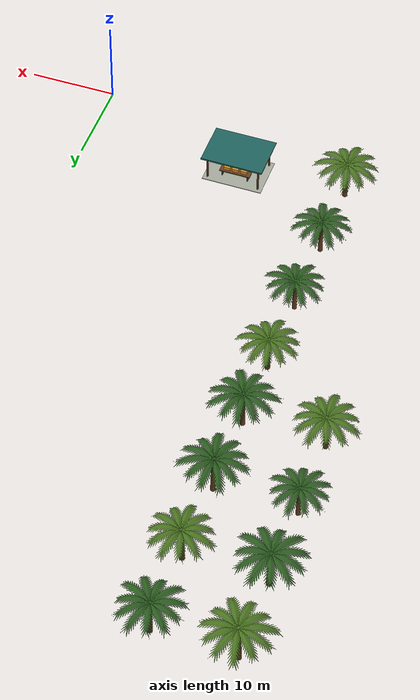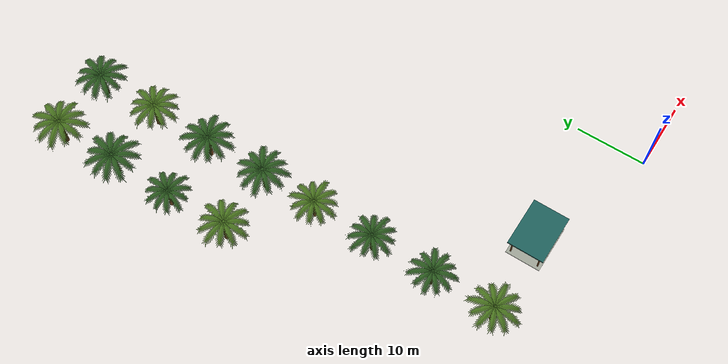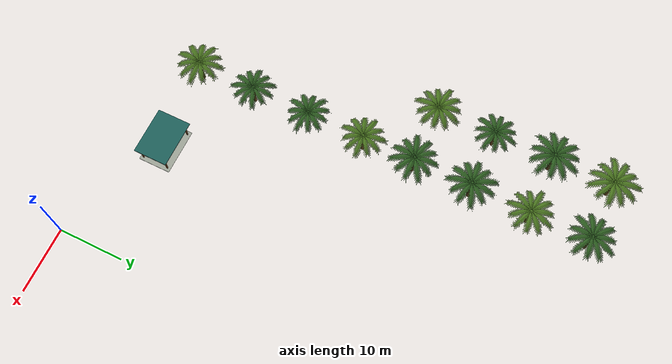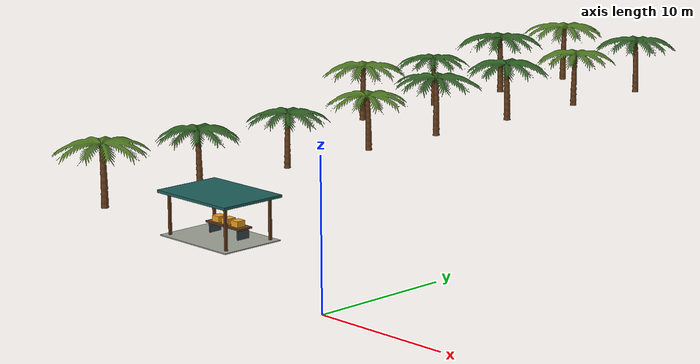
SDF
<sdf version="1.9">
 <world name="fleetscope_estate">
  <model name="palm_003">
   <static>true</static>
   <pose>-30.5 6.5 0 0 0 3.496963</pose>
   <link name="structure">
    <visual name="visual_0">
     <geometry>
      <mesh><uri>model://estate_palm/meshes/trunk.obj</uri><scale>1.032227 1.032227 1.032227</scale></mesh>
     </geometry>
     <material>
      <ambient>0.4 0.24 0.11 1</ambient>
      <diffuse>0.4 0.24 0.11 1</diffuse>
      <specular>.08 .08 .08 1</specular>
     </material>
    </visual>
    <visual name="visual_1">
     <geometry>
      <mesh><uri>model://estate_palm/meshes/fronds.obj</uri><scale>1.032227 1.032227 1.032227</scale></mesh>
     </geometry>
     <material>
      <ambient>0.29 0.46 0.12 1</ambient>
      <diffuse>0.29 0.46 0.12 1</diffuse>
      <specular>.08 .08 .08 1</specular>
     </material>
    </visual>
    <collision name="collision_2">
     <pose>0 0 2.32251 0 0 0</pose>
     <geometry><cylinder><radius>0.268378953316427</radius><length>4.645020345861236</length></cylinder></geometry>
    </collision>
   </link>
  </model>
  <model name="palm_007">
   <static>true</static>
   <pose>-30.5 15.5 0 0 0 3.859159</pose>
   <link name="structure">
    <visual name="visual_0">
     <geometry>
      <mesh><uri>model://estate_palm/meshes/trunk.obj</uri><scale>0.9527855 0.9527855 0.9527855</scale></mesh>
     </geometry>
     <material>
      <ambient>0.4 0.24 0.11 1</ambient>
      <diffuse>0.4 0.24 0.11 1</diffuse>
      <specular>.08 .08 .08 1</specular>
     </material>
    </visual>
    <visual name="visual_1">
     <geometry>
      <mesh><uri>model://estate_palm/meshes/fronds.obj</uri><scale>0.9527855 0.9527855 0.9527855</scale></mesh>
     </geometry>
     <material>
      <ambient>0.17 0.36 0.12 1</ambient>
      <diffuse>0.17 0.36 0.12 1</diffuse>
      <specular>.08 .08 .08 1</specular>
     </material>
    </visual>
    <collision name="collision_2">
     <pose>0 0 2.143767 0 0 0</pose>
     <geometry>
      <cylinder><radius>0.24772422933984545</radius><length>4.287534738574248</length></cylinder>
     </geometry>
    </collision>
   </link>
  </model>
  <model name="palm_011">
   <static>true</static>
   <pose>-30.5 24.5 0 0 0 1.580303</pose>
   <link name="structure">
    <visual name="visual_0">
     <geometry>
      <mesh><uri>model://estate_palm/meshes/trunk.obj</uri><scale>0.9462494 0.9462494 0.9462494</scale></mesh>
     </geometry>
     <material>
      <ambient>0.4 0.24 0.11 1</ambient>
      <diffuse>0.4 0.24 0.11 1</diffuse>
      <specular>.08 .08 .08 1</specular>
     </material>
    </visual>
    <visual name="visual_1">
     <geometry>
      <mesh><uri>model://estate_palm/meshes/fronds.obj</uri><scale>0.9462494 0.9462494 0.9462494</scale></mesh>
     </geometry>
     <material>
      <ambient>0.17 0.36 0.12 1</ambient>
      <diffuse>0.17 0.36 0.12 1</diffuse>
      <specular>.08 .08 .08 1</specular>
     </material>
    </visual>
    <collision name="collision_2">
     <pose>0 0 2.129061 0 0 0</pose>
     <geometry>
      <cylinder><radius>0.2460248506212297</radius><length>4.258122414598206</length></cylinder>
     </geometry>
    </collision>
   </link>
  </model>
  <model name="palm_015">
   <static>true</static>
   <pose>-30.5 33.5 0 0 0 3.502565</pose>
   <link name="structure">
    <visual name="visual_0">
     <geometry>
      <mesh><uri>model://estate_palm/meshes/trunk.obj</uri><scale>0.9748868 0.9748868 0.9748868</scale></mesh>
     </geometry>
     <material>
      <ambient>0.4 0.24 0.11 1</ambient>
      <diffuse>0.4 0.24 0.11 1</diffuse>
      <specular>.08 .08 .08 1</specular>
     </material>
    </visual>
    <visual name="visual_1">
     <geometry>
      <mesh><uri>model://estate_palm/meshes/fronds.obj</uri><scale>0.9748868 0.9748868 0.9748868</scale></mesh>
     </geometry>
     <material>
      <ambient>0.29 0.46 0.12 1</ambient>
      <diffuse>0.29 0.46 0.12 1</diffuse>
      <specular>.08 .08 .08 1</specular>
     </material>
    </visual>
    <collision name="collision_2">
     <pose>0 0 2.193495 0 0 0</pose>
     <geometry>
      <cylinder><radius>0.2534705695236388</radius><length>4.386990626370671</length></cylinder>
     </geometry>
    </collision>
   </link>
  </model>
  <model name="palm_018">
   <static>true</static>
   <pose>-39.5 41.5 0 0 0 0.1554416</pose>
   <link name="structure">
    <visual name="visual_0">
     <geometry>
      <mesh><uri>model://estate_palm/meshes/trunk.obj</uri><scale>1.027033 1.027033 1.027033</scale></mesh>
     </geometry>
     <material>
      <ambient>0.4 0.24 0.11 1</ambient>
      <diffuse>0.4 0.24 0.11 1</diffuse>
      <specular>.08 .08 .08 1</specular>
     </material>
    </visual>
    <visual name="visual_1">
     <geometry>
      <mesh><uri>model://estate_palm/meshes/fronds.obj</uri><scale>1.027033 1.027033 1.027033</scale></mesh>
     </geometry>
     <material>
      <ambient>0.29 0.46 0.12 1</ambient>
      <diffuse>0.29 0.46 0.12 1</diffuse>
      <specular>.08 .08 .08 1</specular>
     </material>
    </visual>
    <collision name="collision_2">
     <pose>0 0 2.310825 0 0 0</pose>
     <geometry>
      <cylinder><radius>0.2670286161219681</radius><length>4.621649125187909</length></cylinder>
     </geometry>
    </collision>
   </link>
  </model>
  <model name="palm_019">
   <static>true</static>
   <pose>-30.5 41.5 0 0 0 2.284203</pose>
   <link name="structure">
    <visual name="visual_0">
     <geometry>
      <mesh><uri>model://estate_palm/meshes/trunk.obj</uri><scale>1.05639 1.05639 1.05639</scale></mesh>
     </geometry>
     <material>
      <ambient>0.4 0.24 0.11 1</ambient>
      <diffuse>0.4 0.24 0.11 1</diffuse>
      <specular>.08 .08 .08 1</specular>
     </material>
    </visual>
    <visual name="visual_1">
     <geometry>
      <mesh><uri>model://estate_palm/meshes/fronds.obj</uri><scale>1.05639 1.05639 1.05639</scale></mesh>
     </geometry>
     <material>
      <ambient>0.17 0.36 0.12 1</ambient>
      <diffuse>0.17 0.36 0.12 1</diffuse>
      <specular>.08 .08 .08 1</specular>
     </material>
    </visual>
    <collision name="collision_2">
     <pose>0 0 2.376877 0 0 0</pose>
     <geometry>
      <cylinder><radius>0.27466132549567457</radius><length>4.7537537105020595</length></cylinder>
     </geometry>
    </collision>
   </link>
  </model>
  <model name="palm_022">
   <static>true</static>
   <pose>-39.5 50.5 0 0 0 3.181546</pose>
   <link name="structure">
    <visual name="visual_0">
     <geometry>
      <mesh><uri>model://estate_palm/meshes/trunk.obj</uri><scale>0.9256185 0.9256185 0.9256185</scale></mesh>
     </geometry>
     <material>
      <ambient>0.4 0.24 0.11 1</ambient>
      <diffuse>0.4 0.24 0.11 1</diffuse>
      <specular>.08 .08 .08 1</specular>
     </material>
    </visual>
    <visual name="visual_1">
     <geometry>
      <mesh><uri>model://estate_palm/meshes/fronds.obj</uri><scale>0.9256185 0.9256185 0.9256185</scale></mesh>
     </geometry>
     <material>
      <ambient>0.17 0.36 0.12 1</ambient>
      <diffuse>0.17 0.36 0.12 1</diffuse>
      <specular>.08 .08 .08 1</specular>
     </material>
    </visual>
    <collision name="collision_2">
     <pose>0 0 2.082642 0 0 0</pose>
     <geometry>
      <cylinder><radius>0.24066082237612724</radius><length>4.165283464202202</length></cylinder>
     </geometry>
    </collision>
   </link>
  </model>
  <model name="palm_023">
   <static>true</static>
   <pose>-30.5 50.5 0 0 0 3.770949</pose>
   <link name="structure">
    <visual name="visual_0">
     <geometry>
      <mesh><uri>model://estate_palm/meshes/trunk.obj</uri><scale>1.065032 1.065032 1.065032</scale></mesh>
     </geometry>
     <material>
      <ambient>0.4 0.24 0.11 1</ambient>
      <diffuse>0.4 0.24 0.11 1</diffuse>
      <specular>.08 .08 .08 1</specular>
     </material>
    </visual>
    <visual name="visual_1">
     <geometry>
      <mesh><uri>model://estate_palm/meshes/fronds.obj</uri><scale>1.065032 1.065032 1.065032</scale></mesh>
     </geometry>
     <material>
      <ambient>0.17 0.36 0.12 1</ambient>
      <diffuse>0.17 0.36 0.12 1</diffuse>
      <specular>.08 .08 .08 1</specular>
     </material>
    </visual>
    <collision name="collision_2">
     <pose>0 0 2.396323 0 0 0</pose>
     <geometry>
      <cylinder><radius>0.2769083964078007</radius><length>4.792645322442704</length></cylinder>
     </geometry>
    </collision>
   </link>
  </model>
  <model name="palm_026">
   <static>true</static>
   <pose>-39.5 59.5 0 0 0 3.010839</pose>
   <link name="structure">
    <visual name="visual_0">
     <geometry>
      <mesh><uri>model://estate_palm/meshes/trunk.obj</uri><scale>1.103771 1.103771 1.103771</scale></mesh>
     </geometry>
     <material>
      <ambient>0.4 0.24 0.11 1</ambient>
      <diffuse>0.4 0.24 0.11 1</diffuse>
      <specular>.08 .08 .08 1</specular>
     </material>
    </visual>
    <visual name="visual_1">
     <geometry>
      <mesh><uri>model://estate_palm/meshes/fronds.obj</uri><scale>1.103771 1.103771 1.103771</scale></mesh>
     </geometry>
     <material>
      <ambient>0.17 0.36 0.12 1</ambient>
      <diffuse>0.17 0.36 0.12 1</diffuse>
      <specular>.08 .08 .08 1</specular>
     </material>
    </visual>
    <collision name="collision_2">
     <pose>0 0 2.483485 0 0 0</pose>
     <geometry>
      <cylinder><radius>0.2869805344714632</radius><length>4.966970788929171</length></cylinder>
     </geometry>
    </collision>
   </link>
  </model>
  <model name="palm_027">
   <static>true</static>
   <pose>-30.5 59.5 0 0 0 0.159443</pose>
   <link name="structure">
    <visual name="visual_0">
     <geometry>
      <mesh><uri>model://estate_palm/meshes/trunk.obj</uri><scale>1.013957 1.013957 1.013957</scale></mesh>
     </geometry>
     <material>
      <ambient>0.4 0.24 0.11 1</ambient>
      <diffuse>0.4 0.24 0.11 1</diffuse>
      <specular>.08 .08 .08 1</specular>
     </material>
    </visual>
    <visual name="visual_1">
     <geometry>
      <mesh><uri>model://estate_palm/meshes/fronds.obj</uri><scale>1.013957 1.013957 1.013957</scale></mesh>
     </geometry>
     <material>
      <ambient>0.29 0.46 0.12 1</ambient>
      <diffuse>0.29 0.46 0.12 1</diffuse>
      <specular>.08 .08 .08 1</specular>
     </material>
    </visual>
    <collision name="collision_2">
     <pose>0 0 2.281404 0 0 0</pose>
     <geometry>
      <cylinder><radius>0.26362886983793904</radius><length>4.562807362579713</length></cylinder>
     </geometry>
    </collision>
   </link>
  </model>
  <model name="palm_030">
   <static>true</static>
   <pose>-39.5 68.5 0 0 0 0.6445064</pose>
   <link name="structure">
    <visual name="visual_0">
     <geometry>
      <mesh><uri>model://estate_palm/meshes/trunk.obj</uri><scale>1.095101 1.095101 1.095101</scale></mesh>
     </geometry>
     <material>
      <ambient>0.4 0.24 0.11 1</ambient>
      <diffuse>0.4 0.24 0.11 1</diffuse>
      <specular>.08 .08 .08 1</specular>
     </material>
    </visual>
    <visual name="visual_1">
     <geometry>
      <mesh><uri>model://estate_palm/meshes/fronds.obj</uri><scale>1.095101 1.095101 1.095101</scale></mesh>
     </geometry>
     <material>
      <ambient>0.29 0.46 0.12 1</ambient>
      <diffuse>0.29 0.46 0.12 1</diffuse>
      <specular>.08 .08 .08 1</specular>
     </material>
    </visual>
    <collision name="collision_2">
     <pose>0 0 2.463978 0 0 0</pose>
     <geometry><cylinder><radius>0.284726370411751</radius><length>4.927956410972612</length></cylinder></geometry>
    </collision>
   </link>
  </model>
  <model name="palm_031">
   <static>true</static>
   <pose>-30.5 68.5 0 0 0 2.95335</pose>
   <link name="structure">
    <visual name="visual_0">
     <geometry>
      <mesh><uri>model://estate_palm/meshes/trunk.obj</uri><scale>1.036908 1.036908 1.036908</scale></mesh>
     </geometry>
     <material>
      <ambient>0.4 0.24 0.11 1</ambient>
      <diffuse>0.4 0.24 0.11 1</diffuse>
      <specular>.08 .08 .08 1</specular>
     </material>
    </visual>
    <visual name="visual_1">
     <geometry>
      <mesh><uri>model://estate_palm/meshes/fronds.obj</uri><scale>1.036908 1.036908 1.036908</scale></mesh>
     </geometry>
     <material>
      <ambient>0.17 0.36 0.12 1</ambient>
      <diffuse>0.17 0.36 0.12 1</diffuse>
      <specular>.08 .08 .08 1</specular>
     </material>
    </visual>
    <collision name="collision_2">
     <pose>0 0 2.333043 0 0 0</pose>
     <geometry>
      <cylinder><radius>0.2695961145770716</radius><length>4.666086598449316</length></cylinder>
     </geometry>
    </collision>
   </link>
  </model>
  <model name="collection_west">
   <static>true</static>
   <pose>-18 7 0 0 0 0</pose>
   <link name="structure">
    <visual name="visual_0">
     <pose>0 0 0.04 0 0 0</pose>
     <geometry><box><size>7 5 0.08</size></box></geometry>
     <material>
      <ambient>0.63 0.65 0.6 1</ambient>
      <diffuse>0.63 0.65 0.6 1</diffuse>
      <specular>.08 .08 .08 1</specular>
     </material>
     <cast_shadows>false</cast_shadows>
    </visual>
    <collision name="collision_0">
     <pose>0 0 0.04 0 0 0</pose>
     <geometry><box><size>7 5 0.08</size></box></geometry>
    </collision>
    <visual name="visual_1">
     <pose>-3 -2 1.55 0 0 0</pose>
     <geometry><box><size>0.18 0.18 3.1</size></box></geometry>
     <material>
      <ambient>0.4 0.24 0.11 1</ambient>
      <diffuse>0.4 0.24 0.11 1</diffuse>
      <specular>.08 .08 .08 1</specular>
     </material>
    </visual>
    <collision name="collision_1">
     <pose>-3 -2 1.55 0 0 0</pose>
     <geometry><box><size>0.18 0.18 3.1</size></box></geometry>
    </collision>
    <visual name="visual_2">
     <pose>-3 2 1.55 0 0 0</pose>
     <geometry><box><size>0.18 0.18 3.1</size></box></geometry>
     <material>
      <ambient>0.4 0.24 0.11 1</ambient>
      <diffuse>0.4 0.24 0.11 1</diffuse>
      <specular>.08 .08 .08 1</specular>
     </material>
    </visual>
    <collision name="collision_2">
     <pose>-3 2 1.55 0 0 0</pose>
     <geometry><box><size>0.18 0.18 3.1</size></box></geometry>
    </collision>
    <visual name="visual_3">
     <pose>3 -2 1.55 0 0 0</pose>
     <geometry><box><size>0.18 0.18 3.1</size></box></geometry>
     <material>
      <ambient>0.4 0.24 0.11 1</ambient>
      <diffuse>0.4 0.24 0.11 1</diffuse>
      <specular>.08 .08 .08 1</specular>
     </material>
    </visual>
    <collision name="collision_3">
     <pose>3 -2 1.55 0 0 0</pose>
     <geometry><box><size>0.18 0.18 3.1</size></box></geometry>
    </collision>
    <visual name="visual_4">
     <pose>3 2 1.55 0 0 0</pose>
     <geometry><box><size>0.18 0.18 3.1</size></box></geometry>
     <material>
      <ambient>0.4 0.24 0.11 1</ambient>
      <diffuse>0.4 0.24 0.11 1</diffuse>
      <specular>.08 .08 .08 1</specular>
     </material>
    </visual>
    <collision name="collision_4">
     <pose>3 2 1.55 0 0 0</pose>
     <geometry><box><size>0.18 0.18 3.1</size></box></geometry>
    </collision>
    <visual name="visual_5">
     <pose>0 0 3.2 0 0 0</pose>
     <geometry><box><size>7.2 5.2 0.2</size></box></geometry>
     <material>
      <ambient>0.12 0.38 0.36 1</ambient>
      <diffuse>0.12 0.38 0.36 1</diffuse>
      <specular>.08 .08 .08 1</specular>
     </material>
    </visual>
    <collision name="collision_5">
     <pose>0 0 3.2 0 0 0</pose>
     <geometry><box><size>7.2 5.2 0.2</size></box></geometry>
    </collision>
    <visual name="visual_6">
     <pose>0 0.8 0.85 0 0 0</pose>
     <geometry><box><size>3.6 1.2 0.12</size></box></geometry>
     <material>
      <ambient>0.4 0.24 0.11 1</ambient>
      <diffuse>0.4 0.24 0.11 1</diffuse>
      <specular>.08 .08 .08 1</specular>
     </material>
    </visual>
    <collision name="collision_6">
     <pose>0 0.8 0.85 0 0 0</pose>
     <geometry><box><size>3.6 1.2 0.12</size></box></geometry>
    </collision>
    <visual name="visual_7">
     <pose>-1.5 0.8 0.4 0 0 0</pose>
     <geometry><box><size>0.12 1 0.8</size></box></geometry>
     <material>
      <ambient>0.25 0.29 0.3 1</ambient>
      <diffuse>0.25 0.29 0.3 1</diffuse>
      <specular>.08 .08 .08 1</specular>
     </material>
    </visual>
    <collision name="collision_7">
     <pose>-1.5 0.8 0.4 0 0 0</pose>
     <geometry><box><size>0.12 1 0.8</size></box></geometry>
    </collision>
    <visual name="visual_8">
     <pose>1.5 0.8 0.4 0 0 0</pose>
     <geometry><box><size>0.12 1 0.8</size></box></geometry>
     <material>
      <ambient>0.25 0.29 0.3 1</ambient>
      <diffuse>0.25 0.29 0.3 1</diffuse>
      <specular>.08 .08 .08 1</specular>
     </material>
    </visual>
    <collision name="collision_8">
     <pose>1.5 0.8 0.4 0 0 0</pose>
     <geometry><box><size>0.12 1 0.8</size></box></geometry>
    </collision>
    <visual name="visual_9">
     <pose>-1 0.8 1.12 0 0 0</pose>
     <geometry><box><size>0.7 0.7 0.45</size></box></geometry>
     <material>
      <ambient>0.95 0.64 0.13 1</ambient>
      <diffuse>0.95 0.64 0.13 1</diffuse>
      <specular>.08 .08 .08 1</specular>
     </material>
    </visual>
    <collision name="collision_9">
     <pose>-1 0.8 1.12 0 0 0</pose>
     <geometry><box><size>0.7 0.7 0.45</size></box></geometry>
    </collision>
    <visual name="visual_10">
     <pose>0 0.8 1.12 0 0 0</pose>
     <geometry><box><size>0.7 0.7 0.45</size></box></geometry>
     <material>
      <ambient>0.95 0.64 0.13 1</ambient>
      <diffuse>0.95 0.64 0.13 1</diffuse>
      <specular>.08 .08 .08 1</specular>
     </material>
    </visual>
    <collision name="collision_10">
     <pose>0 0.8 1.12 0 0 0</pose>
     <geometry><box><size>0.7 0.7 0.45</size></box></geometry>
    </collision>
    <visual name="visual_11">
     <pose>1 0.8 1.12 0 0 0</pose>
     <geometry><box><size>0.7 0.7 0.45</size></box></geometry>
     <material>
      <ambient>0.95 0.64 0.13 1</ambient>
      <diffuse>0.95 0.64 0.13 1</diffuse>
      <specular>.08 .08 .08 1</specular>
     </material>
    </visual>
    <collision name="collision_11">
     <pose>1 0.8 1.12 0 0 0</pose>
     <geometry><box><size>0.7 0.7 0.45</size></box></geometry>
    </collision>
   </link>
  </model>
 </world>
</sdf>
